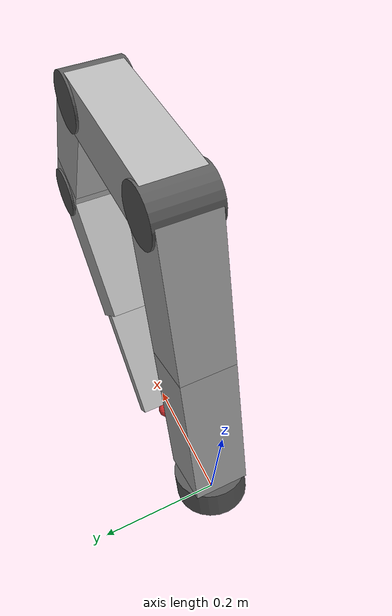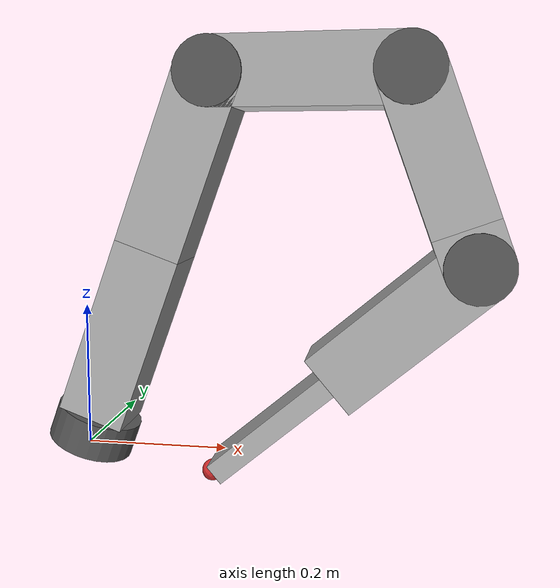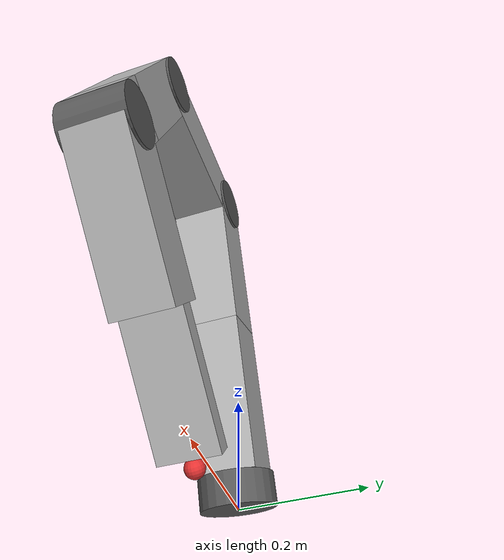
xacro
<?xml version="1.0"?>
<robot xmlns:xacro="http://www.ros.org/wiki/xacro" name="redburi_arm">
  <xacro:arg name="initial_positions_file" default="initial_positions.yaml"/>

  <!-- Import redburi_arm urdf file -->
  <xacro:include filename="$(find redburi_description)/urdf/arm.urdf.xacro"/>

  <!-- Import ros2_control xacro -->
  <xacro:include filename="redburi_arm.ros2_control.xacro"/>

  <xacro:redburi_arm_ros2_control
    name="FakeSystem"
    initial_positions_file="$(arg initial_positions_file)"/>
</robot>

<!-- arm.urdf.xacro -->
<robot name="redburi_arm" xmlns:xacro="http://www.ros.org/wiki/xacro">

  <!-- dimensions -->
  <xacro:property name="link_w" value="0.092"/>
  <xacro:property name="link_h" value="0.092"/>

  <xacro:property name="joint_y_length" value="0.1"/>
  <xacro:property name="base_radius" value="0.06"/>
  <xacro:property name="base_height" value="0.05"/>

  <xacro:property name="link1_len" value="0.25"/>
  <xacro:property name="link2_len" value="0.25"/>
  <xacro:property name="link3_len" value="0.257"/>
  <xacro:property name="link4_len" value="0.214"/>
  <xacro:property name="link5_len" value="0.052"/>
  <xacro:property name="link6_len" value="0.25"/>

  <xacro:property name="gripper_w" value="0.03"/>
  <xacro:property name="gripper_h" value="0.092"/>
  <xacro:property name="gripper_len" value="0.2"/>
  <xacro:property name="tool0_radius" value="0.015"/>

  <xacro:property name="mount_roll" value="0.0"/>
  <xacro:property name="mount_pitch" value="0.349"/> <!-- ~20 deg -->
  <xacro:property name="mount_yaw" value="0.0"/>

  <!-- joint mounting angles (rad, e.g. 1.047 ~= 60 deg) -->
  <xacro:property name="joint_1_yaw" value="0.0"/> <!-- 0 deg -->
  <xacro:property name="joint_2_pitch" value="1.221"/> <!-- ~70 deg -->
  <xacro:property name="joint_3_pitch" value="1.221"/> <!-- ~70 deg -->
  <xacro:property name="joint_4_yaw" value="0.0"/> <!-- 0 deg -->
  <xacro:property name="joint_5_pitch" value="1.221"/> <!-- ~70 deg -->
  <xacro:property name="joint_6_yaw" value="0.0"/> <!-- 0 deg -->

  <!-- materials -->
  <material name="dark_gray">
    <color rgba="0.35 0.35 0.35 1.0"/>
  </material>

  <material name="gray">
    <color rgba="0.7 0.7 0.7 1.0"/>
  </material>

  <material name="blue">
    <color rgba="0.25 0.45 0.90 1.0"/>
  </material>

  <material name="green">
    <color rgba="0.25 0.75 0.35 1.0"/>
  </material>

  <material name="orange">
    <color rgba="0.95 0.55 0.15 1.0"/>
  </material>

  <material name="red">
    <color rgba="0.90 0.20 0.20 1.0"/>
  </material>

  <!-- macros -->

  <!-- simple box link -->
  <xacro:macro name="arm_box_link" params="name link_len material_name">
    <link name="${name}">
      <!-- arm body -->
      <visual>
        <origin xyz="0 0 ${float(link_len) / 2.0}" rpy="0 0 0"/>
        <geometry>
          <box size="${link_w} ${link_h} ${link_len}"/>
        </geometry>
        <material name="${material_name}"/>
      </visual>

      <collision>
        <origin xyz="0 0 ${float(link_len) / 2.0}" rpy="0 0 0"/>
        <geometry>
          <box size="${link_w} ${link_h} ${link_len}"/>
        </geometry>
      </collision>
    </link>
  </xacro:macro>

  <!-- box link without extra joint geometry for Z-axis joints -->
  <xacro:macro name="arm_box_with_joint_z" params="name link_len material_name">
    <link name="${name}">
      <!-- arm body -->
      <visual>
        <origin xyz="0 0 ${float(link_len) / 2.0}" rpy="0 0 0"/>
        <geometry>
          <box size="${link_w} ${link_h} ${link_len}"/>
        </geometry>
        <material name="${material_name}"/>
      </visual>

      <collision>
        <origin xyz="0 0 ${float(link_len) / 2.0}" rpy="0 0 0"/>
        <geometry>
          <box size="${link_w} ${link_h} ${link_len}"/>
        </geometry>
      </collision>
    </link>
  </xacro:macro>

  <!-- box link with joint cylinder at root, aligned to Y-axis -->
  <!-- cylinder default axis is Z, so rotate by +90deg about X to align with Y -->
  <xacro:macro name="arm_box_with_joint_y" params="name link_len material_name">
    <link name="${name}">
      <!-- joint visual -->
      <visual>
        <origin xyz="0 0 0" rpy="1.5708 0 0"/>
        <geometry>
          <cylinder radius="${link_w/2.0}" length="${joint_y_length}"/>
        </geometry>
        <material name="dark_gray"/>
      </visual>

      <!-- arm body -->
      <visual>
        <origin xyz="0 0 ${float(link_len) / 2.0}" rpy="0 0 0"/>
        <geometry>
          <box size="${link_w} ${link_h} ${link_len}"/>
        </geometry>
        <material name="${material_name}"/>
      </visual>

      <collision>
        <origin xyz="0 0 0" rpy="1.5708 0 0"/>
        <geometry>
          <cylinder radius="${link_w/2.0}" length="${joint_y_length}"/>
        </geometry>
      </collision>

      <collision>
        <origin xyz="0 0 ${float(link_len) / 2.0}" rpy="0 0 0"/>
        <geometry>
          <box size="${link_w} ${link_h} ${link_len}"/>
        </geometry>
      </collision>
    </link>
  </xacro:macro>

  <!-- base -->
  <link name="base_mount"/>

  <joint name="base_mount_to_base_link" type="fixed">
    <parent link="base_mount"/>
    <child link="base_link"/>
    <origin xyz="0 0 0" rpy="${mount_roll} ${mount_pitch} ${mount_yaw}"/>
  </joint>

  <link name="base_link">
    <visual>
      <origin xyz="0 0 ${base_height/2.0}" rpy="0 0 0"/>
      <geometry>
        <cylinder radius="${base_radius}" length="${base_height}"/>
      </geometry>
      <material name="dark_gray"/>
    </visual>

    <collision>
      <origin xyz="0 0 ${base_height/2.0}" rpy="0 0 0"/>
      <geometry>
        <cylinder radius="${base_radius}" length="${base_height}"/>
      </geometry>
    </collision>
  </link>

  <!-- link_1 : fixed vertical column -->
  <xacro:arm_box_link name="link_1" link_len="${link1_len}" material_name="gray"/>

  <joint name="base_link_to_link_1" type="fixed">
    <parent link="base_link"/>
    <child link="link_1"/>
    <origin xyz="0 0 ${base_height}" rpy="0 0 0"/>
  </joint>

  <!-- joint_1 : z -->
  <xacro:arm_box_with_joint_z name="link_2" link_len="${link2_len}" material_name="gray"/>

  <joint name="joint_1" type="revolute">
    <parent link="link_1"/>
    <child link="link_2"/>
    <origin xyz="0 0 ${link1_len}" rpy="0 0 ${joint_1_yaw}"/>
    <axis xyz="0 0 1"/>
    <limit lower="-1.3963" upper="1.3963" effort="1.0" velocity="1.0"/>
  </joint>

  <!-- joint_2 : y -->
  <xacro:arm_box_with_joint_y name="link_3" link_len="${link3_len}" material_name="gray"/>

  <joint name="joint_2" type="revolute">
    <parent link="link_2"/>
    <child link="link_3"/>
    <origin xyz="0 0 ${link2_len}" rpy="0 ${joint_2_pitch} 0"/>
    <axis xyz="0 1 0"/>
    <limit lower="-2.7925" upper="0.0" effort="1.0" velocity="1.0"/>
  </joint>

  <!-- joint_3 : y -->
  <xacro:arm_box_with_joint_y name="link_4" link_len="${link4_len}" material_name="gray"/>

  <joint name="joint_3" type="revolute">
    <parent link="link_3"/>
    <child link="link_4"/>
    <origin xyz="0 0 ${link3_len}" rpy="0 ${joint_3_pitch} 0"/>
    <axis xyz="0 1 0"/>
    <limit lower="-2.7925" upper="0.0" effort="1.0" velocity="1.0"/>
  </joint>

  <!-- joint_4 : z -->
  <xacro:arm_box_with_joint_z name="link_5" link_len="${link5_len}" material_name="gray"/>

  <joint name="joint_4" type="revolute">
    <parent link="link_4"/>
    <child link="link_5"/>
    <origin xyz="0 0 ${link4_len}" rpy="0 0 ${joint_4_yaw}"/>
    <axis xyz="0 0 1"/>
    <limit lower="-1.3963" upper="1.3963" effort="1.0" velocity="1.0"/>
  </joint>

  <!-- joint_5 : y -->
  <xacro:arm_box_with_joint_y name="link_6" link_len="${link6_len}" material_name="gray"/>

  <joint name="joint_5" type="revolute">
    <parent link="link_5"/>
    <child link="link_6"/>
    <origin xyz="0 0 ${link5_len}" rpy="0 ${joint_5_pitch} 0"/>
    <axis xyz="0 1 0"/>
    <limit lower="-2.7925" upper="0.0" effort="1.0" velocity="1.0"/>
  </joint>

  <!-- gripper -->
  <link name="gripper_link">
    <visual>
      <origin xyz="0 0 ${gripper_len/2.0}" rpy="0 0 0"/>
      <geometry>
        <box size="${gripper_w} ${gripper_h} ${gripper_len}"/>
      </geometry>
      <material name="gray"/>
    </visual>

    <collision>
      <origin xyz="0 0 ${gripper_len/2.0}" rpy="0 0 0"/>
      <geometry>
        <box size="${gripper_w} ${gripper_h} ${gripper_len}"/>
      </geometry>
    </collision>
  </link>

  <joint name="joint_6" type="revolute">
    <parent link="link_6"/>
    <child link="gripper_link"/>
    <origin xyz="0 0 ${link6_len}" rpy="0 0 ${joint_6_yaw}"/>
    <axis xyz="0 0 1"/>
    <limit lower="-1.3963" upper="1.3963" effort="1.0" velocity="1.0"/>
  </joint>

  <!-- tool0 -->
  <link name="tool0">
    <visual>
      <origin xyz="0 0 ${tool0_radius}" rpy="0 0 0"/>
      <geometry>
        <sphere radius="${tool0_radius}"/>
      </geometry>
      <material name="red"/>
    </visual>

    <collision>
      <origin xyz="0 0 ${tool0_radius}" rpy="0 0 0"/>
      <geometry>
        <sphere radius="${tool0_radius}"/>
      </geometry>
    </collision>
  </link>

  <joint name="tool0_fixed" type="fixed">
    <parent link="gripper_link"/>
    <child link="tool0"/>
    <origin xyz="0 0 ${gripper_len}" rpy="0 0 0"/>
  </joint>

</robot>
